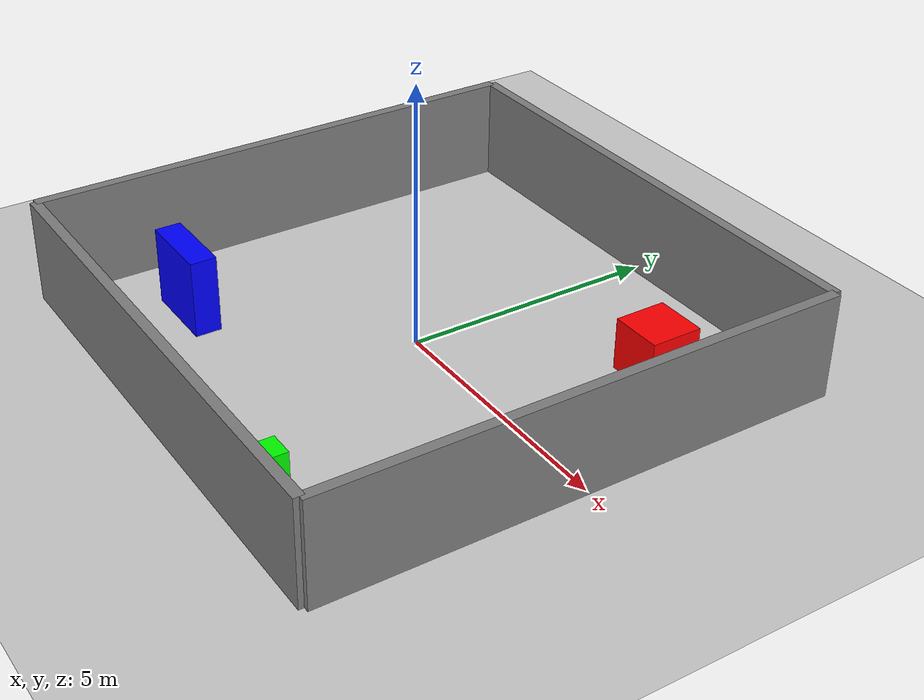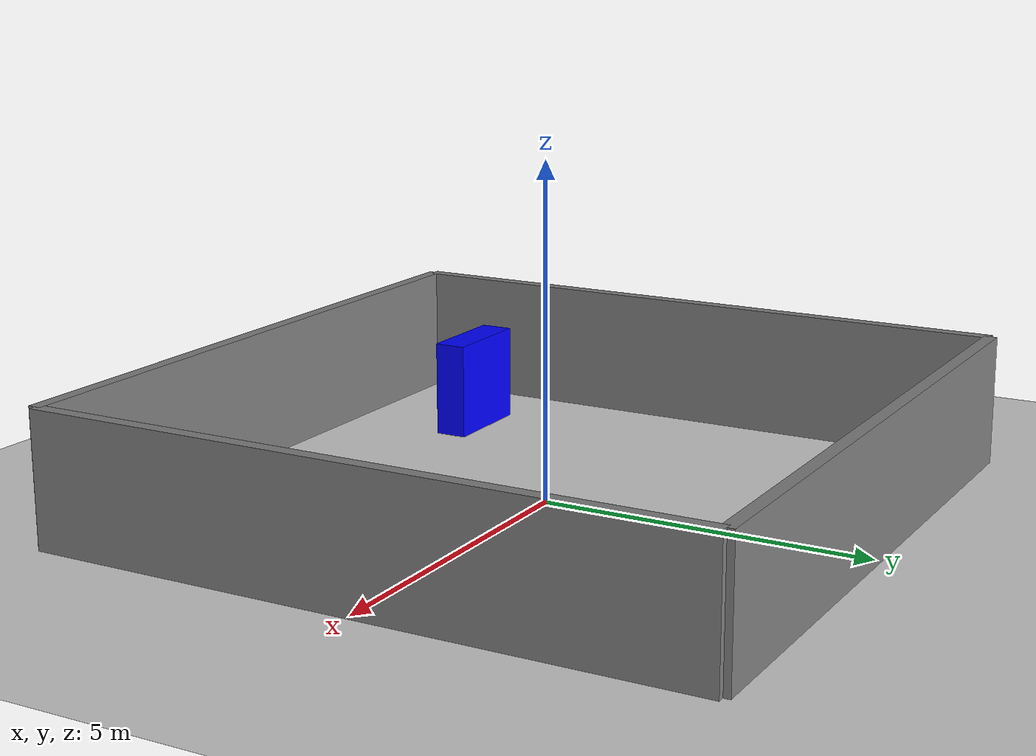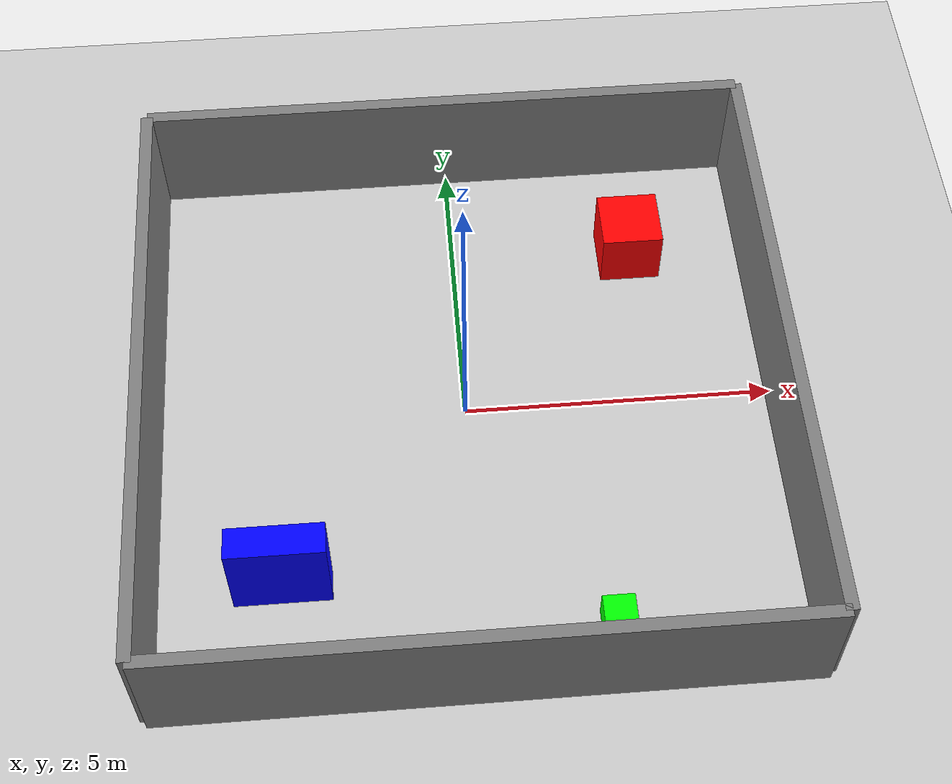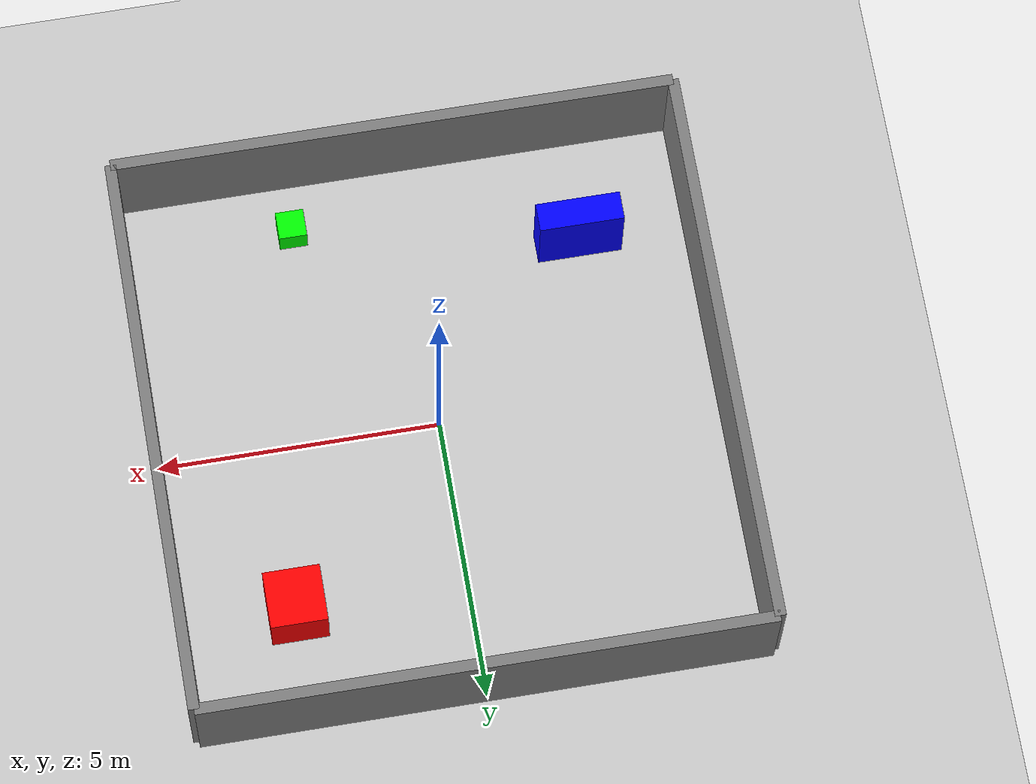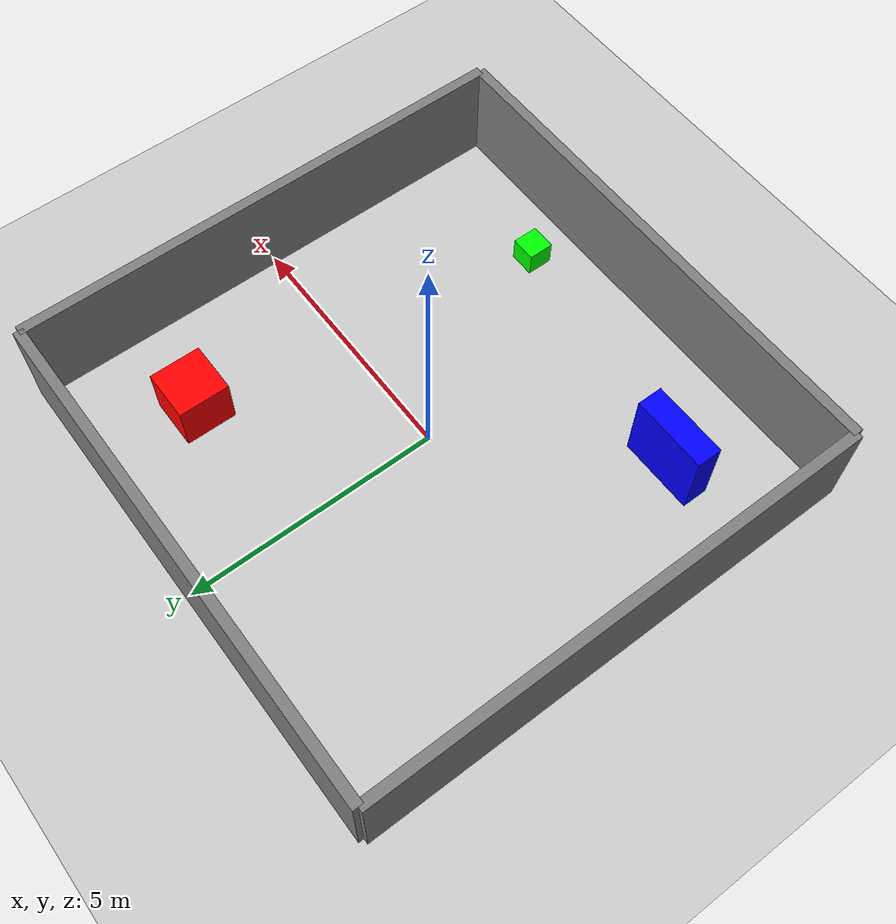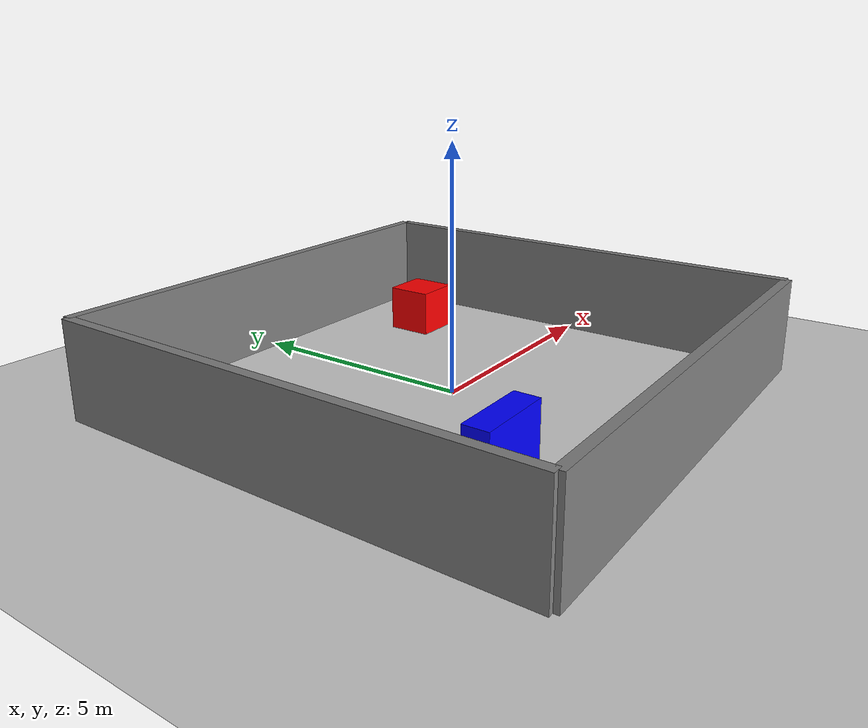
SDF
<?xml version="1.0" ?>
<sdf version="1.9">
  <world name="four_walls_world">
    <!-- Ground plane -->
    <model name="ground_plane">
      <static>true</static>
      <link name="link">
        <collision name="collision">
          <geometry>
            <plane>
              <normal>0 0 1</normal>
              <size>100 100</size>
            </plane>
          </geometry>
        </collision>
        <visual name="visual">
          <geometry>
            <plane>
              <normal>0 0 1</normal>
              <size>100 100</size>
            </plane>
          </geometry>
          <material>
            <diffuse>0.8 0.8 0.8 1</diffuse>
          </material>
        </visual>
      </link>
    </model>

    <!-- North wall -->
    <model name="north_wall">
      <static>true</static>
      <pose>0 5 1 0 0 0</pose>
      <link name="link">
        <collision name="collision">
          <geometry>
            <box>
              <size>10 0.2 2</size>
            </box>
          </geometry>
        </collision>
        <visual name="visual">
          <geometry>
            <box>
              <size>10 0.2 2</size>
            </box>
          </geometry>
          <material>
            <diffuse>0.5 0.5 0.5 1</diffuse>
          </material>
        </visual>
      </link>
    </model>

    <!-- South wall -->
    <model name="south_wall">
      <static>true</static>
      <pose>0 -5 1 0 0 0</pose>
      <link name="link">
        <collision name="collision">
          <geometry>
            <box>
              <size>10 0.2 2</size>
            </box>
          </geometry>
        </collision>
        <visual name="visual">
          <geometry>
            <box>
              <size>10 0.2 2</size>
            </box>
          </geometry>
          <material>
            <diffuse>0.5 0.5 0.5 1</diffuse>
          </material>
        </visual>
      </link>
    </model>

    <!-- East wall -->
    <model name="east_wall">
      <static>true</static>
      <pose>5 0 1 0 0 1.5708</pose>
      <link name="link">
        <collision name="collision">
          <geometry>
            <box>
              <size>10 0.2 2</size>
            </box>
          </geometry>
        </collision>
        <visual name="visual">
          <geometry>
            <box>
              <size>10 0.2 2</size>
            </box>
          </geometry>
          <material>
            <diffuse>0.5 0.5 0.5 1</diffuse>
          </material>
        </visual>
      </link>
    </model>

    <!-- West wall -->
    <model name="west_wall">
      <static>true</static>
      <pose>-5 0 1 0 0 1.5708</pose>
      <link name="link">
        <collision name="collision">
          <geometry>
            <box>
              <size>10 0.2 2</size>
            </box>
          </geometry>
        </collision>
        <visual name="visual">
          <geometry>
            <box>
              <size>10 0.2 2</size>
            </box>
          </geometry>
          <material>
            <diffuse>0.5 0.5 0.5 1</diffuse>
          </material>
        </visual>
      </link>
    </model>

    <!-- Obstacle 1 (Red Box) -->
    <model name="obstacle_1">
      <static>true</static>
      <pose>3 3 0.5 0 0 0</pose>
      <link name="link">
        <collision name="collision">
          <geometry>
            <box>
              <size>1 1 1</size>
            </box>
          </geometry>
        </collision>
        <visual name="visual">
          <geometry>
            <box>
              <size>1 1 1</size>
            </box>
          </geometry>
          <material>
            <diffuse>1 0 0 1</diffuse>
          </material>
        </visual>
      </link>
    </model>

    <!-- Obstacle 2 (Blue Box) -->
    <model name="obstacle_2">
      <static>true</static>
      <pose>-3 -3 0.75 0 0 0</pose>
      <link name="link">
        <collision name="collision">
          <geometry>
            <box>
              <size>1.5 0.5 1.5</size>
            </box>
          </geometry>
        </collision>
        <visual name="visual">
          <geometry>
            <box>
              <size>1.5 0.5 1.5</size>
            </box>
          </geometry>
          <material>
            <diffuse>0 0 1 1</diffuse>
          </material>
        </visual>
      </link>
    </model>

    <!-- Obstacle 3 (Green Box) -->
    <model name="obstacle_3">
      <static>true</static>
      <pose>2 -4 0.25 0 0 0</pose>
      <link name="link">
        <collision name="collision">
          <geometry>
            <box>
              <size>0.5 0.5 0.5</size>
            </box>
          </geometry>
        </collision>
        <visual name="visual">
          <geometry>
            <box>
              <size>0.5 0.5 0.5</size>
            </box>
          </geometry>
          <material>
            <diffuse>0 1 0 1</diffuse>
          </material>
        </visual>
      </link>
    </model>

    <!-- Include default lighting -->
    <light type="directional" name="sun">
      <cast_shadows>true</cast_shadows>
      <pose>0 0 10 0 0 0</pose>
      <diffuse>0.8 0.8 0.8 1</diffuse>
      <specular>0.2 0.2 0.2 1</specular>
      <direction>-0.5 0.1 -0.9</direction>
    </light>

  </world>
</sdf>
